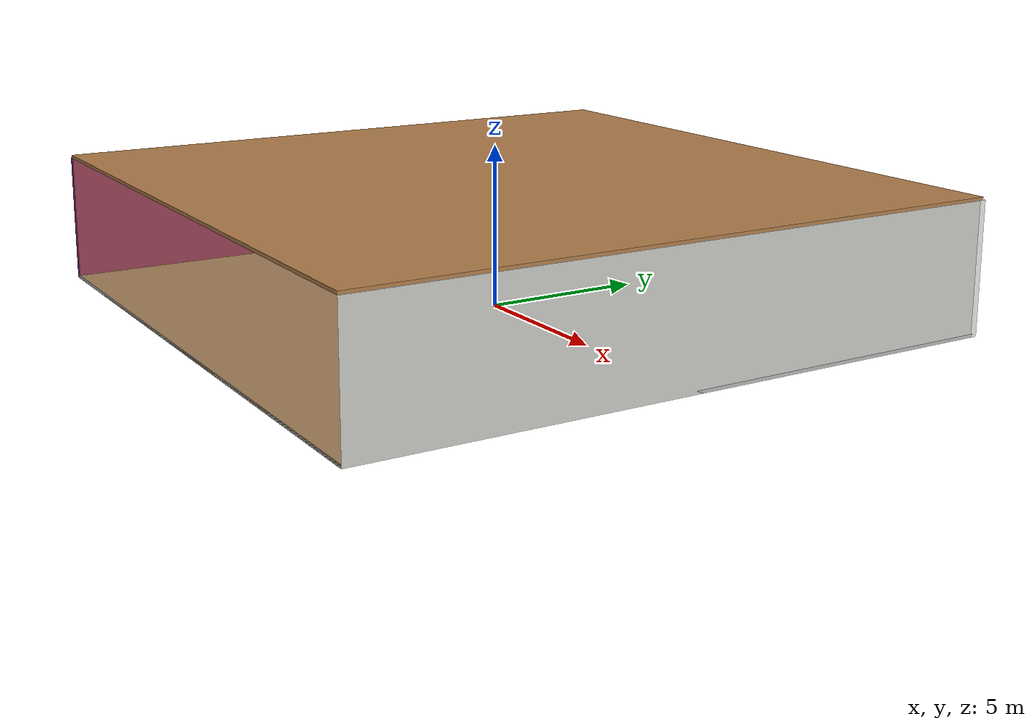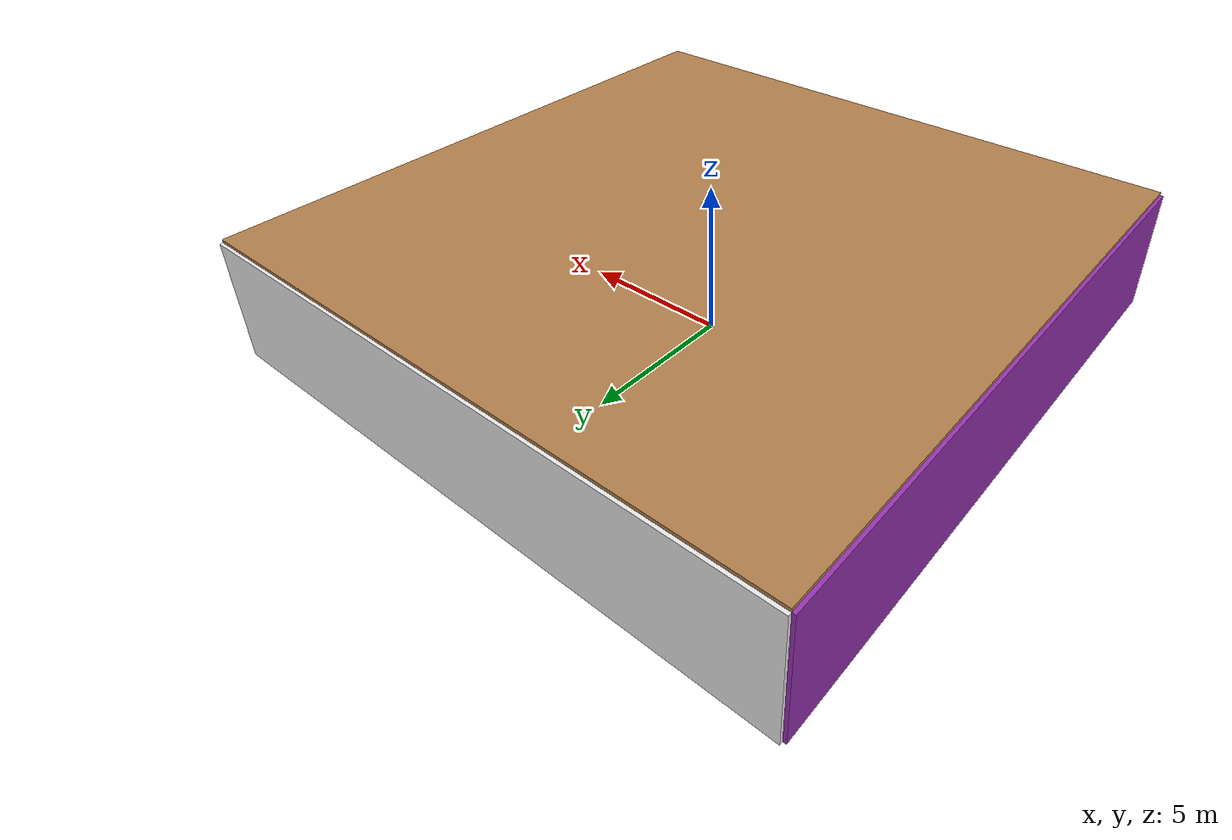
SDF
<sdf version="1.4">
 <world name="default">
  <physics type="ode">
   <max_step_size>0.001</max_step_size>
   <real_time_factor>1</real_time_factor>
   <real_time_update_rate>1000</real_time_update_rate>
   <gravity>0 0 -9.8</gravity>
  </physics>
  <scene><ambient>0.4 0.4 0.4 1</ambient><background>0.7 0.7 0.7 1</background><shadows>1</shadows></scene>
  <model name="Surrounding">
   <static>1</static>
   <link name="Ceiling">
    <collision name="Ceiling_Collision"><geometry><box><size>20 20 0.1</size></box></geometry></collision>
    <visual name="Ceiling_Visual">
     <geometry><box><size>20 20 0.1</size></box></geometry>
     <material>
      <script><uri>file://media/materials/scripts/gazebo.material</uri><name>Gazebo/Wood</name></script>
     </material>
    </visual>
    <pose>0 0 4.05 0 0 0</pose>
   </link>
   <link name="Wall_South">
    <collision name="Wall_South_Collision">
     <geometry><box><size>20 0 4</size></box></geometry>
     <pose>0 0 2 0 -0 0</pose>
    </collision>
    <visual name="Wall_South_Visual">
     <pose>0 0 2 0 -0 0</pose>
     <geometry><box><size>20 0 4</size></box></geometry>
     <material>
      <script>
       <uri>file://media/materials/scripts/gazebo.material</uri>
       <name>Gazebo/OrangeTransparent</name>
      </script>
     </material>
    </visual>
    <velocity_decay><linear>0</linear><angular>0</angular></velocity_decay>
    <pose>0 -10 0 0 -0 0</pose>
   </link>
   <link name="Wall_East">
    <collision name="Wall_21_Collision">
     <geometry><box><size>20 0 4</size></box></geometry>
     <pose>0 0 2 0 -0 0</pose>
    </collision>
    <visual name="Wall_21_Visual">
     <pose>0 0 2 0 -0 0</pose>
     <geometry><box><size>20 0 4</size></box></geometry>
     <material>
      <script><uri>file://media/materials/scripts/gazebo.material</uri><name>Gazebo/CeilingTiled</name></script>
     </material>
    </visual>
    <velocity_decay><linear>0</linear><angular>0</angular></velocity_decay>
    <pose>10 0 0 0 -0 1.5708</pose>
   </link>
   <link name="Wall_North">
    <collision name="Wall_22_Collision">
     <geometry><box><size>20 0.2 4</size></box></geometry>
     <pose>0 0 2 0 -0 0</pose>
    </collision>
    <visual name="Wall_22_Visual">
     <pose>0 0 2 0 -0 0</pose>
     <geometry><box><size>20 0.2 4</size></box></geometry>
     <material>
      <script><uri>file://media/materials/scripts/gazebo.material</uri><name>Gazebo/White</name></script>
     </material>
    </visual>
    <velocity_decay><linear>0</linear><angular>0</angular></velocity_decay>
    <pose>0 10 0 0 -0 0</pose>
   </link>
   <link name="Wall_West">
    <collision name="Wall_23_Collision">
     <geometry><box><size>20 0.2 4</size></box></geometry>
     <pose>0 0 2 0 -0 0</pose>
    </collision>
    <visual name="Wall_23_Visual">
     <pose>0 0 2 0 -0 0</pose>
     <geometry><box><size>20 0.2 4</size></box></geometry>
     <material>
      <script><uri>file://media/materials/scripts/gazebo.material</uri><name>Gazebo/Purple</name></script>
     </material>
    </visual>
    <velocity_decay><linear>0</linear><angular>0</angular></velocity_decay>
    <pose>-10 0 0 0 0 -1.5708</pose>
   </link>
   <link name="Ground_link">
    <collision name="collision">
     <pose>0 0 .05 0 -0 0</pose>
     <geometry><box><size>20 20 0.1</size></box></geometry>
    </collision>
    <visual name="visual">
     <pose>0 0 .05 0 -0 0</pose>
     <geometry><box><size>20 20 0.1</size></box></geometry>
     <material>
      <script><uri>file://media/materials/scripts/gazebo.material</uri><name>Gazebo/CloudySky</name></script>
     </material>
    </visual>
   </link>
   <static>1</static>
  </model>
  <spherical_coordinates>
   <surface_model>EARTH_WGS84</surface_model>
   <latitude_deg>0</latitude_deg>
   <longitude_deg>0</longitude_deg>
   <elevation>0</elevation>
   <heading_deg>0</heading_deg>
  </spherical_coordinates>
  <light name="lightball_0" type="diffuse">
   <diffuse>0.8 0.8 0.8 1</diffuse>
   <specular>0.2 0.2 0.2 1</specular>
   <attenuation>
    <range>100</range>
    <constant>0.7</constant>
    <linear>0.01</linear>
    <quadratic>0.001</quadratic>
   </attenuation>
   <direction>-0.5 0.1 -0.9</direction>
   <pose>-1.30367046479 -6.28862829394 2.47378991125 0 0 0</pose>
  </light>
  <light name="lightball_1" type="diffuse">
   <diffuse>0.8 0.8 0.8 1</diffuse>
   <specular>0.2 0.2 0.2 1</specular>
   <attenuation>
    <range>100</range>
    <constant>0.7</constant>
    <linear>0.01</linear>
    <quadratic>0.001</quadratic>
   </attenuation>
   <direction>-0.5 0.1 -0.9</direction>
   <pose>-1.27423783392 2.90871109979 3.8031288649 0 0 0</pose>
  </light>
  <light name="lightball_2" type="diffuse">
   <diffuse>0.8 0.8 0.8 1</diffuse>
   <specular>0.2 0.2 0.2 1</specular>
   <attenuation>
    <range>100</range>
    <constant>0.7</constant>
    <linear>0.01</linear>
    <quadratic>0.001</quadratic>
   </attenuation>
   <direction>-0.5 0.1 -0.9</direction>
   <pose>-1.73260876201 9.4691266454 2.91939258059 0 0 0</pose>
  </light>
  <light name="lightball_3" type="diffuse">
   <diffuse>0.8 0.8 0.8 1</diffuse>
   <specular>0.2 0.2 0.2 1</specular>
   <attenuation>
    <range>100</range>
    <constant>0.7</constant>
    <linear>0.01</linear>
    <quadratic>0.001</quadratic>
   </attenuation>
   <direction>-0.5 0.1 -0.9</direction>
   <pose>0.947775647696 -9.52241352915 3.66484273048 0 0 0</pose>
  </light>
  <light name="lightball_4" type="diffuse">
   <diffuse>0.8 0.8 0.8 1</diffuse>
   <specular>0.2 0.2 0.2 1</specular>
   <attenuation>
    <range>100</range>
    <constant>0.7</constant>
    <linear>0.01</linear>
    <quadratic>0.001</quadratic>
   </attenuation>
   <direction>-0.5 0.1 -0.9</direction>
   <pose>-1.62023355268 9.24770268842 3.09938632066 0 0 0</pose>
  </light>
  <light name="lightball_5" type="diffuse">
   <diffuse>0.8 0.8 0.8 1</diffuse>
   <specular>0.2 0.2 0.2 1</specular>
   <attenuation>
    <range>100</range>
    <constant>0.7</constant>
    <linear>0.01</linear>
    <quadratic>0.001</quadratic>
   </attenuation>
   <direction>-0.5 0.1 -0.9</direction>
   <pose>-1.93710912534 9.15118609905 0.543344603748 0 0 0</pose>
  </light>
  <light name="lightball_6" type="diffuse">
   <diffuse>0.8 0.8 0.8 1</diffuse>
   <specular>0.2 0.2 0.2 1</specular>
   <attenuation>
    <range>100</range>
    <constant>0.7</constant>
    <linear>0.01</linear>
    <quadratic>0.001</quadratic>
   </attenuation>
   <direction>-0.5 0.1 -0.9</direction>
   <pose>-1.46982605606 -7.61456781066 1.50137171565 0 0 0</pose>
  </light>
  <light name="lightball_7" type="diffuse">
   <diffuse>0.8 0.8 0.8 1</diffuse>
   <specular>0.2 0.2 0.2 1</specular>
   <attenuation>
    <range>100</range>
    <constant>0.7</constant>
    <linear>0.01</linear>
    <quadratic>0.001</quadratic>
   </attenuation>
   <direction>-0.5 0.1 -0.9</direction>
   <pose>-3.74784908326 -6.43463677007 2.22401761326 0 0 0</pose>
  </light>
  <light name="lightball_8" type="diffuse">
   <diffuse>0.8 0.8 0.8 1</diffuse>
   <specular>0.2 0.2 0.2 1</specular>
   <attenuation>
    <range>100</range>
    <constant>0.7</constant>
    <linear>0.01</linear>
    <quadratic>0.001</quadratic>
   </attenuation>
   <direction>-0.5 0.1 -0.9</direction>
   <pose>-4.3563362784 7.91327662533 3.81977836477 0 0 0</pose>
  </light>
  <light name="lightball_9" type="diffuse">
   <diffuse>0.8 0.8 0.8 1</diffuse>
   <specular>0.2 0.2 0.2 1</specular>
   <attenuation>
    <range>100</range>
    <constant>0.7</constant>
    <linear>0.01</linear>
    <quadratic>0.001</quadratic>
   </attenuation>
   <direction>-0.5 0.1 -0.9</direction>
   <pose>9.31330815406 -6.4900860196 2.73635010129 0 0 0</pose>
  </light>
  <light name="lightball_10" type="diffuse">
   <diffuse>0.8 0.8 0.8 1</diffuse>
   <specular>0.2 0.2 0.2 1</specular>
   <attenuation>
    <range>100</range>
    <constant>0.7</constant>
    <linear>0.01</linear>
    <quadratic>0.001</quadratic>
   </attenuation>
   <direction>-0.5 0.1 -0.9</direction>
   <pose>4.68907387644 8.21371410034 1.10700961708 0 0 0</pose>
  </light>
  <light name="lightball_11" type="diffuse">
   <diffuse>0.8 0.8 0.8 1</diffuse>
   <specular>0.2 0.2 0.2 1</specular>
   <attenuation>
    <range>100</range>
    <constant>0.7</constant>
    <linear>0.01</linear>
    <quadratic>0.001</quadratic>
   </attenuation>
   <direction>-0.5 0.1 -0.9</direction>
   <pose>-4.09426215848 -5.14335122174 1.50183416003 0 0 0</pose>
  </light>
  <include><uri>model://table</uri><pose>-1.10151745567 3.60985331494 0 0 0 3.02243165108</pose></include>
  <include>
   <uri>model://textured_shapes</uri>
   <pose>4.77944185557 5.00228670917 0 0 0 1.78772326432</pose>
  </include>
 </world>
</sdf>

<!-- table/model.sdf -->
<sdf version="1.5">
  <model name="table">
    <static>true</static>
    <link name="link">
      <collision name="surface">
        <pose>0 0 1.0 0 0 0</pose>
        <geometry>
          <box>
            <size>1.5 0.8 0.03</size>
          </box>
        </geometry>
        <surface>
          <friction>
            <ode>
              <mu>0.6</mu>
              <mu2>0.6</mu2>
            </ode>
          </friction>
        </surface>
      </collision>
      <visual name="visual1">
        <pose>0 0 1.0 0 0 0</pose>
        <geometry>
          <box>
            <size>1.5 0.8 0.03</size>
          </box>
        </geometry>
        <material>
          <script>
            <uri>model://media/materials/scripts/gazebo.material</uri>
            <name>Gazebo/Wood</name>
          </script>
        </material>
      </visual>
      <collision name="front_left_leg">
        <pose>0.68 0.38 0.5 0 0 0</pose>
        <geometry>
          <cylinder>
            <radius>0.02</radius>
            <length>1.0</length>
          </cylinder>
        </geometry>
      </collision>
      <visual name="front_left_leg">
        <pose>0.68 0.38 0.5 0 0 0</pose>
        <geometry>
          <cylinder>
            <radius>0.02</radius>
            <length>1.0</length>
          </cylinder>
        </geometry>
        <material>
          <script>
            <uri>model://media/materials/scripts/gazebo.material</uri>
            <name>Gazebo/Grey</name>
          </script>
        </material>
      </visual>
      <collision name="front_right_leg">
        <pose>0.68 -0.38 0.5 0 0 0</pose>
        <geometry>
          <cylinder>
            <radius>0.02</radius>
            <length>1.0</length>
          </cylinder>
        </geometry>
      </collision>
      <visual name="front_right_leg">
        <pose>0.68 -0.38 0.5 0 0 0</pose>
        <geometry>
          <cylinder>
            <radius>0.02</radius>
            <length>1.0</length>
          </cylinder>
        </geometry>
        <material>
          <script>
            <uri>model://media/materials/scripts/gazebo.material</uri>
            <name>Gazebo/Grey</name>
          </script>
        </material>
      </visual>
      <collision name="back_right_leg">
        <pose>-0.68 -0.38 0.5 0 0 0</pose>
        <geometry>
          <cylinder>
            <radius>0.02</radius>
            <length>1.0</length>
          </cylinder>
        </geometry>
      </collision>
      <visual name="back_right_leg">
        <pose>-0.68 -0.38 0.5 0 0 0</pose>
        <geometry>
          <cylinder>
            <radius>0.02</radius>
            <length>1.0</length>
          </cylinder>
        </geometry>
        <material>
          <script>
            <uri>model://media/materials/scripts/gazebo.material</uri>
            <name>Gazebo/Grey</name>
          </script>
        </material>
      </visual>
      <collision name="back_left_leg">
        <pose>-0.68 0.38 0.5 0 0 0</pose>
        <geometry>
          <cylinder>
            <radius>0.02</radius>
            <length>1.0</length>
          </cylinder>
        </geometry>
      </collision>
      <visual name="back_left_leg">
        <pose>-0.68 0.38 0.5 0 0 0</pose>
        <geometry>
          <cylinder>
            <radius>0.02</radius>
            <length>1.0</length>
          </cylinder>
        </geometry>
        <material>
          <script>
            <uri>model://media/materials/scripts/gazebo.material</uri>
            <name>Gazebo/Grey</name>
          </script>
        </material>
      </visual>
    </link>
  </model>
</sdf>

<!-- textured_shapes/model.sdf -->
<sdf version="1.6">
  <model name="textured_shapes">
    <pose>0 0 0.5 0 0 0</pose>
    <link name="box">
      <pose>0 -1.5 0 0 0 0</pose>
      <collision name="collision">
        <geometry>
          <box>
            <size>1 1 1</size>
          </box>
        </geometry>
      </collision>
      <visual name="visual">
        <geometry>
          <box>
            <size>1 1 1</size>
          </box>
        </geometry>
        <material>
          <script>
            <uri>model://../model_source/models/textured_shapes/materials/scripts</uri>
            <uri>model://../model_source/models/textured_shapes/materials/textures</uri>
            <name>TexturedShape/Squares</name>
          </script>
        </material>
      </visual>
    </link>
    <link name="sphere">
      <collision name="collision">
        <geometry>
          <sphere>
            <radius>0.5</radius>
          </sphere>
        </geometry>
      </collision>
      <visual name="visual">
        <geometry>
          <sphere>
            <radius>0.5</radius>
          </sphere>
        </geometry>
        <material>
          <script>
            <uri>model://../model_source/models/textured_shapes/materials/scripts</uri>
            <uri>model://../model_source/models/textured_shapes/materials/textures</uri>
            <name>TexturedShape/Squares</name>
          </script>
        </material>
      </visual>
    </link>
    <link name="cylinder">
      <pose>0 1.5 0 0 0 0</pose>
      <collision name="collision">
        <geometry>
          <cylinder>
            <radius>0.5</radius>
            <length>1</length>
          </cylinder>
        </geometry>
      </collision>
      <visual name="visual">
        <geometry>
          <cylinder>
            <radius>0.5</radius>
            <length>1</length>
          </cylinder>
        </geometry>
        <material>
          <script>
            <uri>model://../model_source/models/textured_shapes/materials/scripts</uri>
            <uri>model://../model_source/models/textured_shapes/materials/textures</uri>
            <name>TexturedShape/Squares</name>
          </script>
        </material>
      </visual>
    </link>
  </model>
</sdf>
